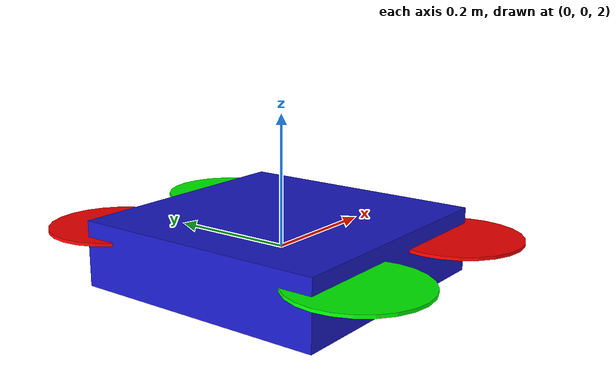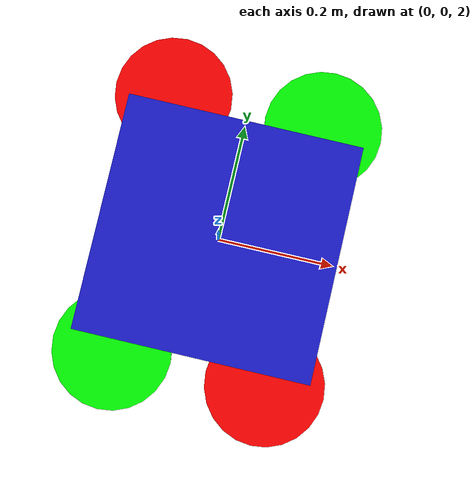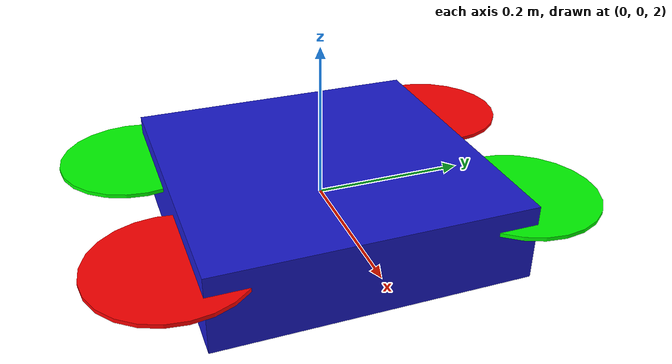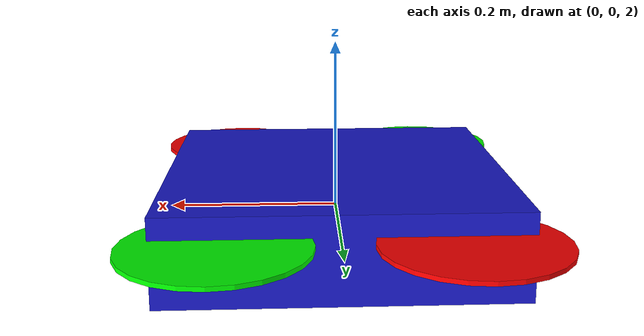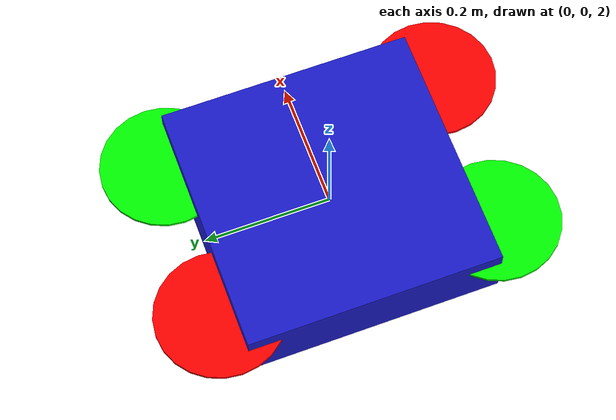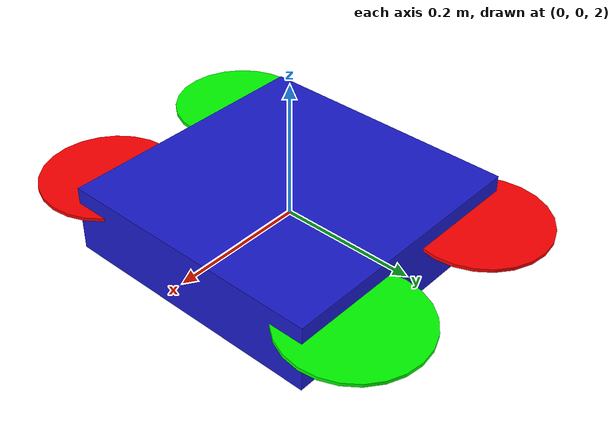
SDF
<sdf version="1.9">
 <world name="test">
  <physics name="1ms" type="ignored">
   <max_step_size>0.001</max_step_size>
   <real_time_factor>1.0</real_time_factor>
  </physics>
  <plugin filename="gz-sim-physics-system" name="gz::sim::systems::Physics"/>
  <plugin filename="gz-sim-sensors-system" name="gz::sim::systems::Sensors">
   <render_engine>ogre</render_engine>
  </plugin>
  <plugin filename="gz-sim-scene-broadcaster-system" name="gz::sim::systems::SceneBroadcaster"/>
  <plugin filename="gz-sim-user-commands-system" name="gz::sim::systems::UserCommands"/>
  <light name="sun" type="directional">
   <pose>0 0 10 0 0 0</pose>
   <diffuse>0.8 0.8 0.8 1</diffuse>
   <specular>0.2 0.2 0.2 1</specular>
   <direction>-0.5 0.1 -0.9</direction>
  </light>
  <model name="ground">
   <static>true</static>
   <link name="link">
    <collision name="c"><geometry><plane><normal>0 0 1</normal><size>100 100</size></plane></geometry></collision>
    <visual name="v">
     <geometry><plane><normal>0 0 1</normal><size>100 100</size></plane></geometry>
     <material><ambient>0.4 0.5 0.4 1</ambient><diffuse>0.4 0.5 0.4 1</diffuse></material>
    </visual>
   </link>
  </model>
  <include><uri>model://quadrotor</uri><pose>0 0 2 0 0 0</pose></include>
 </world>
</sdf>

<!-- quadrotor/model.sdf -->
<sdf version="1.9">
  <model name="quadrotor">
    <self_collide>false</self_collide>

    <!-- ===== Main Body ===== -->
    <link name="base_link">
      <inertial>
        <mass>1.5</mass>
        <inertia>
          <ixx>0.029125</ixx><iyy>0.029125</iyy><izz>0.055225</izz>
          <ixy>0</ixy><ixz>0</ixz><iyz>0</iyz>
        </inertia>
      </inertial>
      <visual name="body_visual">
        <geometry><box><size>0.4 0.4 0.1</size></box></geometry>
        <material><ambient>0.1 0.1 0.8 1</ambient><diffuse>0.1 0.1 0.8 1</diffuse></material>
      </visual>
      <collision name="body_collision">
        <geometry><box><size>0.4 0.4 0.1</size></box></geometry>
      </collision>

      <!-- forward-facing camera -->
      <sensor name="camera" type="camera">
        <pose>0.06 0 0 0 0 0</pose>
        <camera>
          <horizontal_fov>1.4418</horizontal_fov>
          <image><width>1280</width><height>720</height><format>R8G8B8</format></image>
          <clip><near>0.1</near><far>100</far></clip>
        </camera>
        <always_on>1</always_on>
        <update_rate>30</update_rate>
        <visualize>true</visualize>
        <topic>/drone/camera</topic>
      </sensor>
    </link>

    <!-- ===== Rotor 0: Front-Left (CCW) ===== -->
    <link name="rotor_0">
      <pose>0.13 0.22 0.023 0 0 0</pose>
      <inertial>
        <mass>0.025</mass>
        <inertia><ixx>9.75e-7</ixx><iyy>4.17e-5</iyy><izz>4.26e-5</izz></inertia>
      </inertial>
      <visual name="rotor_0_visual">
        <geometry><cylinder><radius>0.1</radius><length>0.005</length></cylinder></geometry>
        <material><ambient>0 1 0 1</ambient><diffuse>0 1 0 1</diffuse></material>
      </visual>
      <collision name="rotor_0_collision">
        <geometry><cylinder><radius>0.1</radius><length>0.005</length></cylinder></geometry>
      </collision>
    </link>
    <joint name="rotor_0_joint" type="revolute">
      <parent>base_link</parent><child>rotor_0</child>
      <axis>
        <xyz>0 0 1</xyz>
        <limit><lower>-1e+16</lower><upper>1e+16</upper></limit>
        <dynamics><damping>0.004</damping></dynamics>
      </axis>
    </joint>

    <!-- ===== Rotor 1: Back-Right (CCW) ===== -->
    <link name="rotor_1">
      <pose>-0.13 -0.22 0.023 0 0 0</pose>
      <inertial>
        <mass>0.025</mass>
        <inertia><ixx>9.75e-7</ixx><iyy>4.17e-5</iyy><izz>4.26e-5</izz></inertia>
      </inertial>
      <visual name="rotor_1_visual">
        <geometry><cylinder><radius>0.1</radius><length>0.005</length></cylinder></geometry>
        <material><ambient>0 1 0 1</ambient><diffuse>0 1 0 1</diffuse></material>
      </visual>
      <collision name="rotor_1_collision">
        <geometry><cylinder><radius>0.1</radius><length>0.005</length></cylinder></geometry>
      </collision>
    </link>
    <joint name="rotor_1_joint" type="revolute">
      <parent>base_link</parent><child>rotor_1</child>
      <axis>
        <xyz>0 0 1</xyz>
        <limit><lower>-1e+16</lower><upper>1e+16</upper></limit>
        <dynamics><damping>0.004</damping></dynamics>
      </axis>
    </joint>

    <!-- ===== Rotor 2: Front-Right (CW) ===== -->
    <link name="rotor_2">
      <pose>0.13 -0.22 0.023 0 0 0</pose>
      <inertial>
        <mass>0.025</mass>
        <inertia><ixx>9.75e-7</ixx><iyy>4.17e-5</iyy><izz>4.26e-5</izz></inertia>
      </inertial>
      <visual name="rotor_2_visual">
        <geometry><cylinder><radius>0.1</radius><length>0.005</length></cylinder></geometry>
        <material><ambient>1 0 0 1</ambient><diffuse>1 0 0 1</diffuse></material>
      </visual>
      <collision name="rotor_2_collision">
        <geometry><cylinder><radius>0.1</radius><length>0.005</length></cylinder></geometry>
      </collision>
    </link>
    <joint name="rotor_2_joint" type="revolute">
      <parent>base_link</parent><child>rotor_2</child>
      <axis>
        <xyz>0 0 1</xyz>
        <limit><lower>-1e+16</lower><upper>1e+16</upper></limit>
        <dynamics><damping>0.004</damping></dynamics>
      </axis>
    </joint>

    <!-- ===== Rotor 3: Back-Left (CW) ===== -->
    <link name="rotor_3">
      <pose>-0.13 0.22 0.023 0 0 0</pose>
      <inertial>
        <mass>0.025</mass>
        <inertia><ixx>9.75e-7</ixx><iyy>4.17e-5</iyy><izz>4.26e-5</izz></inertia>
      </inertial>
      <visual name="rotor_3_visual">
        <geometry><cylinder><radius>0.1</radius><length>0.005</length></cylinder></geometry>
        <material><ambient>1 0 0 1</ambient><diffuse>1 0 0 1</diffuse></material>
      </visual>
      <collision name="rotor_3_collision">
        <geometry><cylinder><radius>0.1</radius><length>0.005</length></cylinder></geometry>
      </collision>
    </link>
    <joint name="rotor_3_joint" type="revolute">
      <parent>base_link</parent><child>rotor_3</child>
      <axis>
        <xyz>0 0 1</xyz>
        <limit><lower>-1e+16</lower><upper>1e+16</upper></limit>
        <dynamics><damping>0.004</damping></dynamics>
      </axis>
    </joint>

    <!-- ===== Motor Model Plugins (one per rotor) ===== -->
    <plugin filename="gz-sim-multicopter-motor-model-system"
            name="gz::sim::systems::MulticopterMotorModel">
      <robotNamespace>drone</robotNamespace>
      <jointName>rotor_0_joint</jointName>
      <linkName>rotor_0</linkName>
      <turningDirection>ccw</turningDirection>
      <timeConstantUp>0.0125</timeConstantUp>
      <timeConstantDown>0.025</timeConstantDown>
      <maxRotVelocity>800</maxRotVelocity>
      <motorConstant>8.54858e-06</motorConstant>
      <momentConstant>0.06</momentConstant>
      <commandSubTopic>command/motor_speed</commandSubTopic>
      <motorNumber>0</motorNumber>
      <rotorDragCoefficient>8.06428e-05</rotorDragCoefficient>
      <rollingMomentCoefficient>1e-06</rollingMomentCoefficient>
      <motorSpeedPubTopic>motor_speed/0</motorSpeedPubTopic>
      <rotorVelocitySlowdownSim>10</rotorVelocitySlowdownSim>
    </plugin>

    <plugin filename="gz-sim-multicopter-motor-model-system"
            name="gz::sim::systems::MulticopterMotorModel">
      <robotNamespace>drone</robotNamespace>
      <jointName>rotor_1_joint</jointName>
      <linkName>rotor_1</linkName>
      <turningDirection>ccw</turningDirection>
      <timeConstantUp>0.0125</timeConstantUp>
      <timeConstantDown>0.025</timeConstantDown>
      <maxRotVelocity>800</maxRotVelocity>
      <motorConstant>8.54858e-06</motorConstant>
      <momentConstant>0.06</momentConstant>
      <commandSubTopic>command/motor_speed</commandSubTopic>
      <motorNumber>1</motorNumber>
      <rotorDragCoefficient>8.06428e-05</rotorDragCoefficient>
      <rollingMomentCoefficient>1e-06</rollingMomentCoefficient>
      <motorSpeedPubTopic>motor_speed/1</motorSpeedPubTopic>
      <rotorVelocitySlowdownSim>10</rotorVelocitySlowdownSim>
    </plugin>

    <plugin filename="gz-sim-multicopter-motor-model-system"
            name="gz::sim::systems::MulticopterMotorModel">
      <robotNamespace>drone</robotNamespace>
      <jointName>rotor_2_joint</jointName>
      <linkName>rotor_2</linkName>
      <turningDirection>cw</turningDirection>
      <timeConstantUp>0.0125</timeConstantUp>
      <timeConstantDown>0.025</timeConstantDown>
      <maxRotVelocity>800</maxRotVelocity>
      <motorConstant>8.54858e-06</motorConstant>
      <momentConstant>0.06</momentConstant>
      <commandSubTopic>command/motor_speed</commandSubTopic>
      <motorNumber>2</motorNumber>
      <rotorDragCoefficient>8.06428e-05</rotorDragCoefficient>
      <rollingMomentCoefficient>1e-06</rollingMomentCoefficient>
      <motorSpeedPubTopic>motor_speed/2</motorSpeedPubTopic>
      <rotorVelocitySlowdownSim>10</rotorVelocitySlowdownSim>
    </plugin>

    <plugin filename="gz-sim-multicopter-motor-model-system"
            name="gz::sim::systems::MulticopterMotorModel">
      <robotNamespace>drone</robotNamespace>
      <jointName>rotor_3_joint</jointName>
      <linkName>rotor_3</linkName>
      <turningDirection>cw</turningDirection>
      <timeConstantUp>0.0125</timeConstantUp>
      <timeConstantDown>0.025</timeConstantDown>
      <maxRotVelocity>800</maxRotVelocity>
      <motorConstant>8.54858e-06</motorConstant>
      <momentConstant>0.06</momentConstant>
      <commandSubTopic>command/motor_speed</commandSubTopic>
      <motorNumber>3</motorNumber>
      <rotorDragCoefficient>8.06428e-05</rotorDragCoefficient>
      <rollingMomentCoefficient>1e-06</rollingMomentCoefficient>
      <motorSpeedPubTopic>motor_speed/3</motorSpeedPubTopic>
      <rotorVelocitySlowdownSim>10</rotorVelocitySlowdownSim>
    </plugin>

    <!-- ===== Velocity Controller (with full rotorConfiguration) ===== -->
    <plugin filename="gz-sim-multicopter-control-system"
            name="gz::sim::systems::MulticopterVelocityControl">
      <robotNamespace>drone</robotNamespace>
      <commandSubTopic>cmd_vel</commandSubTopic>
      <enableSubTopic>enable</enableSubTopic>
      <comLinkName>base_link</comLinkName>
      <velocityGain>2.7 2.7 2.7</velocityGain>
      <attitudeGain>2 3 0.15</attitudeGain>
      <angularRateGain>0.4 0.52 0.18</angularRateGain>
      <maximumLinearAcceleration>2 2 2</maximumLinearAcceleration>
      <rotorConfiguration>
        <rotor>
          <jointName>rotor_0_joint</jointName>
          <forceConstant>8.54858e-06</forceConstant>
          <momentConstant>0.06</momentConstant>
          <direction>1</direction>
        </rotor>
        <rotor>
          <jointName>rotor_1_joint</jointName>
          <forceConstant>8.54858e-06</forceConstant>
          <momentConstant>0.06</momentConstant>
          <direction>1</direction>
        </rotor>
        <rotor>
          <jointName>rotor_2_joint</jointName>
          <forceConstant>8.54858e-06</forceConstant>
          <momentConstant>0.06</momentConstant>
          <direction>-1</direction>
        </rotor>
        <rotor>
          <jointName>rotor_3_joint</jointName>
          <forceConstant>8.54858e-06</forceConstant>
          <momentConstant>0.06</momentConstant>
          <direction>-1</direction>
        </rotor>
      </rotorConfiguration>
    </plugin>

  </model>
</sdf>
